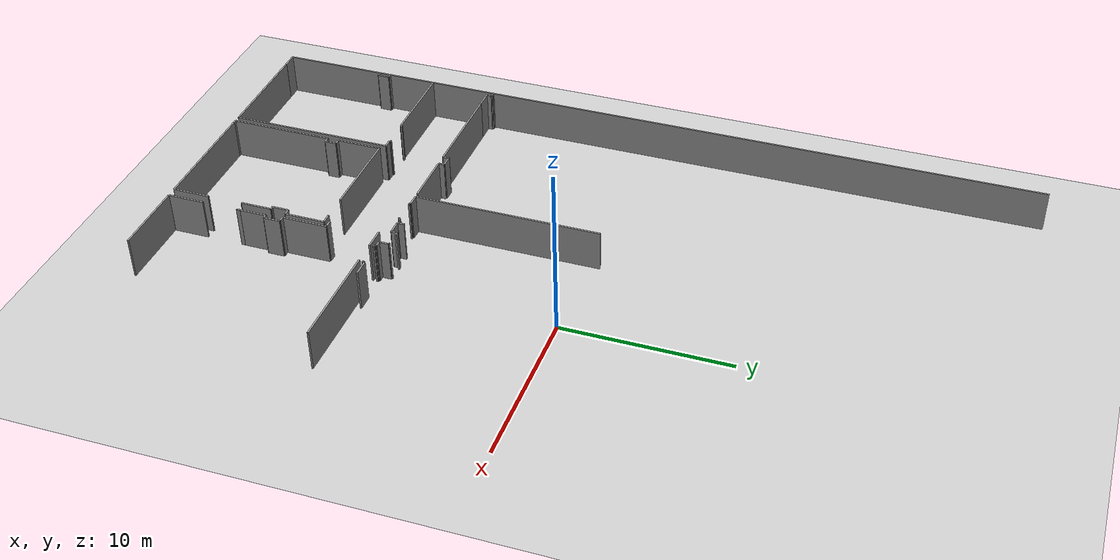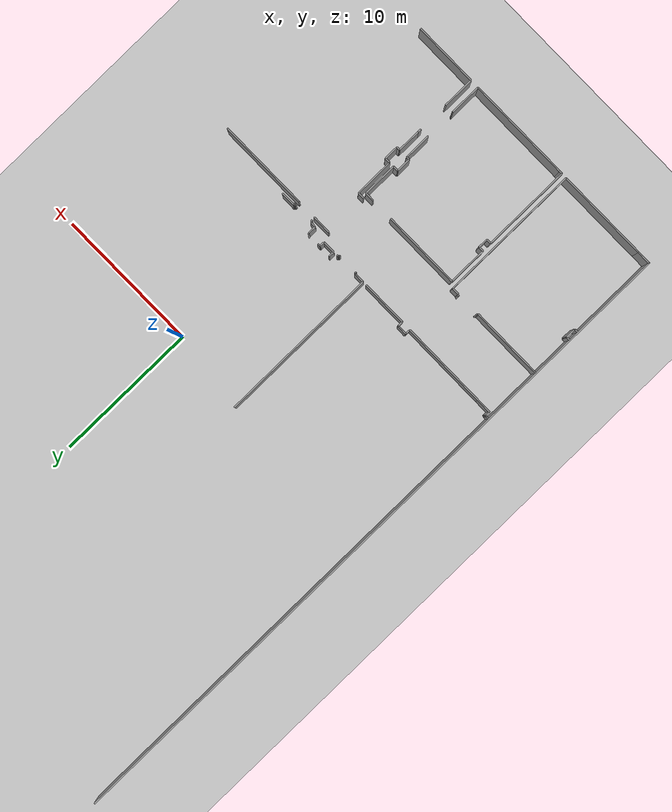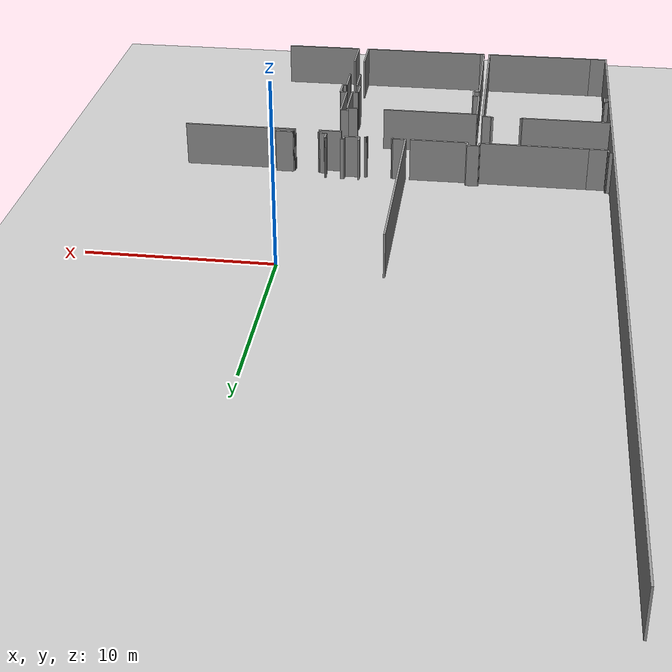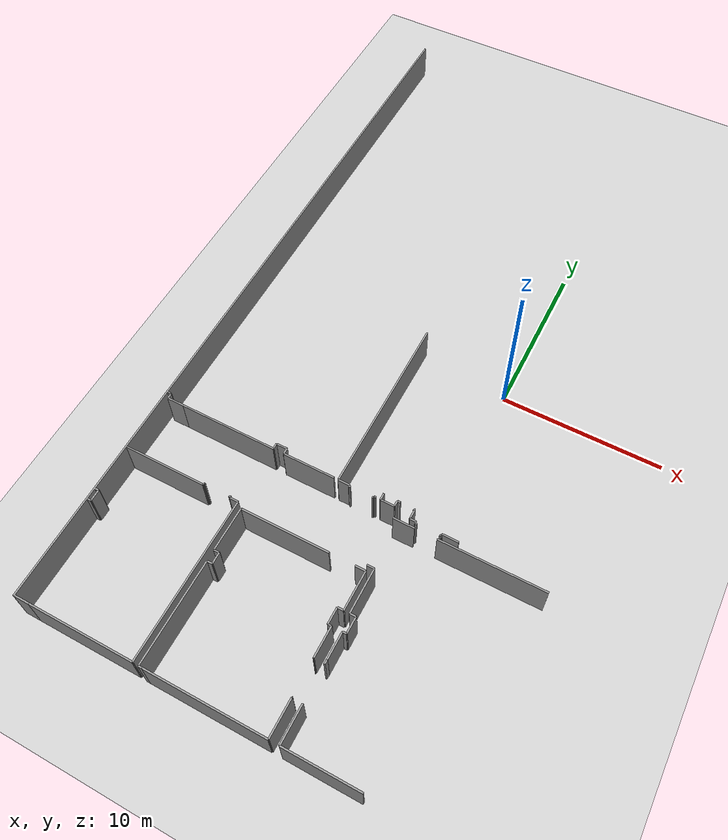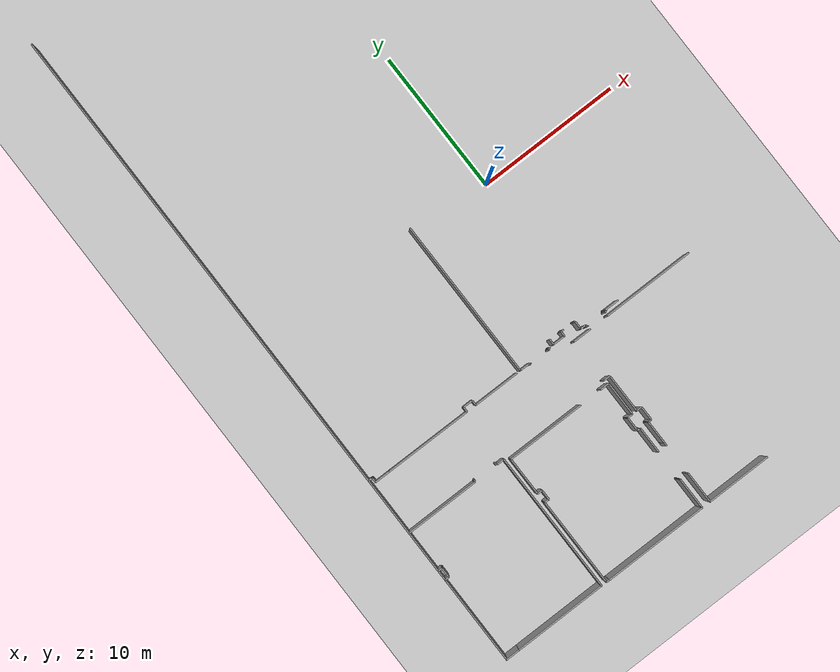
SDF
<sdf version="1.6">
 <world name="default">
  <model name="ground_plane">
   <static>1</static>
   <link name="link">
    <collision name="collision">
     <geometry><plane><normal>0 0 1</normal><size>100 100</size></plane></geometry>
     <surface><friction><ode><mu>100</mu><mu2>50</mu2></ode></friction></surface>
    </collision>
    <visual name="visual">
     <cast_shadows>0</cast_shadows>
     <geometry><plane><normal>0 0 1</normal><size>100 100</size></plane></geometry>
     <material>
      <script><uri>file://media/materials/scripts/gazebo.material</uri><name>Gazebo/Grey</name></script>
     </material>
    </visual>
   </link>
  </model>
  <model name="50055648">
   <static>1</static>
   <link name="Wall_37">
    <collision name="Wall_37_Collision">
     <geometry><box><size>1.05575386492 0.1 2.5</size></box></geometry>
     <pose>0.527876932458 0 1.25 0 0 0</pose>
    </collision>
    <visual name="Wall_37_Visual">
     <pose>0.527876932458 0 1.25 0 0 0</pose>
     <geometry><box><size>1.05575386492 0.1 2.5</size></box></geometry>
     <material>
      <script><uri>file://media/materials/scripts/gazebo.material</uri><name>Gazebo/Grey</name></script>
      <ambient>1 1 1 1</ambient>
     </material>
    </visual>
    <pose>1.34297074478 -34.5305572846 0 0 0 3.14159265359</pose>
   </link>
   <link name="Wall_38">
    <collision name="Wall_38_Collision">
     <geometry><box><size>0.288741250746 0.1 2.5</size></box></geometry>
     <pose>0.144370625373 0 1.25 0 0 0</pose>
    </collision>
    <visual name="Wall_38_Visual">
     <pose>0.144370625373 0 1.25 0 0 0</pose>
     <geometry><box><size>0.288741250746 0.1 2.5</size></box></geometry>
     <material>
      <script><uri>file://media/materials/scripts/gazebo.material</uri><name>Gazebo/Grey</name></script>
      <ambient>1 1 1 1</ambient>
     </material>
    </visual>
    <pose>0.287216879867 -34.5305572846 0 0 0 1.57079632679</pose>
   </link>
   <link name="Wall_39">
    <collision name="Wall_39_Collision">
     <geometry><box><size>0.0676090898377 0.1 2.5</size></box></geometry>
     <pose>0.0338045449188 0 1.25 0 0 0</pose>
    </collision>
    <visual name="Wall_39_Visual">
     <pose>0.0338045449188 0 1.25 0 0 0</pose>
     <geometry><box><size>0.0676090898377 0.1 2.5</size></box></geometry>
     <material>
      <script><uri>file://media/materials/scripts/gazebo.material</uri><name>Gazebo/Grey</name></script>
      <ambient>1 1 1 1</ambient>
     </material>
    </visual>
    <pose>0.287216879867 -34.2418160338 0 0 0 2.31366695557</pose>
   </link>
   <link name="Wall_40">
    <collision name="Wall_40_Collision">
     <geometry><box><size>0.236658579032 0.1 2.5</size></box></geometry>
     <pose>0.118329289516 0 1.25 0 0 0</pose>
    </collision>
    <visual name="Wall_40_Visual">
     <pose>0.118329289516 0 1.25 0 0 0</pose>
     <geometry><box><size>0.236658579032 0.1 2.5</size></box></geometry>
     <material>
      <script><uri>file://media/materials/scripts/gazebo.material</uri><name>Gazebo/Grey</name></script>
      <ambient>1 1 1 1</ambient>
     </material>
    </visual>
    <pose>0.241485753484 -34.1920199184 0 0 0 3.14159265359</pose>
   </link>
   <link name="Wall_55">
    <collision name="Wall_55_Collision">
     <geometry><box><size>3.21489818473 0.1 2.5</size></box></geometry>
     <pose>1.60744909236 0 1.25 0 0 0</pose>
    </collision>
    <visual name="Wall_55_Visual">
     <pose>1.60744909236 0 1.25 0 0 0</pose>
     <geometry><box><size>3.21489818473 0.1 2.5</size></box></geometry>
     <material>
      <script><uri>file://media/materials/scripts/gazebo.material</uri><name>Gazebo/Grey</name></script>
      <ambient>1 1 1 1</ambient>
     </material>
    </visual>
    <pose>11.2939368148 -34.5538039405 0 0 0 3.14159265359</pose>
   </link>
   <link name="Wall_56">
    <collision name="Wall_56_Collision">
     <geometry><box><size>0.354162167655 0.1 2.5</size></box></geometry>
     <pose>0.177081083828 0 1.25 0 0 0</pose>
    </collision>
    <visual name="Wall_56_Visual">
     <pose>0.177081083828 0 1.25 0 0 0</pose>
     <geometry><box><size>0.354162167655 0.1 2.5</size></box></geometry>
     <material>
      <script><uri>file://media/materials/scripts/gazebo.material</uri><name>Gazebo/Grey</name></script>
      <ambient>1 1 1 1</ambient>
     </material>
    </visual>
    <pose>8.0790386301 -34.5538039405 0 0 0 1.57079632679</pose>
   </link>
   <link name="Wall_57">
    <collision name="Wall_57_Collision">
     <geometry><box><size>0.673263805084 0.1 2.5</size></box></geometry>
     <pose>0.336631902542 0 1.25 0 0 0</pose>
    </collision>
    <visual name="Wall_57_Visual">
     <pose>0.336631902542 0 1.25 0 0 0</pose>
     <geometry><box><size>0.673263805084 0.1 2.5</size></box></geometry>
     <material>
      <script><uri>file://media/materials/scripts/gazebo.material</uri><name>Gazebo/Grey</name></script>
      <ambient>1 1 1 1</ambient>
     </material>
    </visual>
    <pose>8.0790386301 -34.1996417728 0 0 0 3.14159265359</pose>
   </link>
   <link name="Wall_58">
    <collision name="Wall_58_Collision">
     <geometry><box><size>0.00660560714421 0.1 2.5</size></box></geometry>
     <pose>0.0033028035721 0 1.25 0 0 0</pose>
    </collision>
    <visual name="Wall_58_Visual">
     <pose>0.0033028035721 0 1.25 0 0 0</pose>
     <geometry><box><size>0.00660560714421 0.1 2.5</size></box></geometry>
     <material>
      <script><uri>file://media/materials/scripts/gazebo.material</uri><name>Gazebo/Grey</name></script>
      <ambient>1 1 1 1</ambient>
     </material>
    </visual>
    <pose>7.40577482501 -34.1996417728 0 0 0 3.14159265359</pose>
   </link>
   <link name="Wall_59">
    <collision name="Wall_59_Collision">
     <geometry><box><size>0.349716085924 0.1 2.5</size></box></geometry>
     <pose>0.174858042962 0 1.25 0 0 0</pose>
    </collision>
    <visual name="Wall_59_Visual">
     <pose>0.174858042962 0 1.25 0 0 0</pose>
     <geometry><box><size>0.349716085924 0.1 2.5</size></box></geometry>
     <material>
      <script><uri>file://media/materials/scripts/gazebo.material</uri><name>Gazebo/Grey</name></script>
      <ambient>1 1 1 1</ambient>
     </material>
    </visual>
    <pose>7.39916921787 -34.1996417728 0 0 0 -1.57079632679</pose>
   </link>
   <link name="Wall_60">
    <collision name="Wall_60_Collision">
     <geometry><box><size>6.05622765482 0.1 2.5</size></box></geometry>
     <pose>3.02811382741 0 1.25 0 0 0</pose>
    </collision>
    <visual name="Wall_60_Visual">
     <pose>3.02811382741 0 1.25 0 0 0</pose>
     <geometry><box><size>6.05622765482 0.1 2.5</size></box></geometry>
     <material>
      <script><uri>file://media/materials/scripts/gazebo.material</uri><name>Gazebo/Grey</name></script>
      <ambient>1 1 1 1</ambient>
     </material>
    </visual>
    <pose>7.39916921787 -34.5493578588 0 0 0 3.13848831118</pose>
   </link>
   <link name="Wall_61">
    <collision name="Wall_61_Collision">
     <geometry><box><size>11.1557271884 0.1 2.5</size></box></geometry>
     <pose>5.57786359421 0 1.25 0 0 0</pose>
    </collision>
    <visual name="Wall_61_Visual">
     <pose>5.57786359421 0 1.25 0 0 0</pose>
     <geometry><box><size>11.1557271884 0.1 2.5</size></box></geometry>
     <material>
      <script><uri>file://media/materials/scripts/gazebo.material</uri><name>Gazebo/Grey</name></script>
      <ambient>1 1 1 1</ambient>
     </material>
    </visual>
    <pose>11.5608287496 -34.5479605188 0 0 0 1.57079632679</pose>
   </link>
   <link name="Wall_75">
    <collision name="Wall_75_Collision">
     <geometry><box><size>0.112676414172 0.1 2.5</size></box></geometry>
     <pose>0.0563382070858 0 1.25 0 0 0</pose>
    </collision>
    <visual name="Wall_75_Visual">
     <pose>0.0563382070858 0 1.25 0 0 0</pose>
     <geometry><box><size>0.112676414172 0.1 2.5</size></box></geometry>
     <material>
      <script><uri>file://media/materials/scripts/gazebo.material</uri><name>Gazebo/Grey</name></script>
      <ambient>1 1 1 1</ambient>
     </material>
    </visual>
    <pose>13.8907026079 -34.5427522516 0 0 0 3.14159265359</pose>
   </link>
   <link name="Wall_76">
    <collision name="Wall_76_Collision">
     <geometry><box><size>0.0805375947968 0.1 2.5</size></box></geometry>
     <pose>0.0402687973984 0 1.25 0 0 0</pose>
    </collision>
    <visual name="Wall_76_Visual">
     <pose>0.0402687973984 0 1.25 0 0 0</pose>
     <geometry><box><size>0.0805375947968 0.1 2.5</size></box></geometry>
     <material>
      <script><uri>file://media/materials/scripts/gazebo.material</uri><name>Gazebo/Grey</name></script>
      <ambient>1 1 1 1</ambient>
     </material>
    </visual>
    <pose>13.7780261938 -34.5427522516 0 0 0 -1.57079632679</pose>
   </link>
   <link name="Wall_77">
    <collision name="Wall_77_Collision">
     <geometry><box><size>0.0846025838086 0.1 2.5</size></box></geometry>
     <pose>0.0423012919043 0 1.25 0 0 0</pose>
    </collision>
    <visual name="Wall_77_Visual">
     <pose>0.0423012919043 0 1.25 0 0 0</pose>
     <geometry><box><size>0.0846025838086 0.1 2.5</size></box></geometry>
     <material>
      <script><uri>file://media/materials/scripts/gazebo.material</uri><name>Gazebo/Grey</name></script>
      <ambient>1 1 1 1</ambient>
     </material>
    </visual>
    <pose>13.7780261938 -34.6232898464 0 0 0 3.14159265359</pose>
   </link>
   <link name="Wall_78">
    <collision name="Wall_78_Collision">
     <geometry><box><size>0.0955272417779 0.1 2.5</size></box></geometry>
     <pose>0.047763620889 0 1.25 0 0 0</pose>
    </collision>
    <visual name="Wall_78_Visual">
     <pose>0.047763620889 0 1.25 0 0 0</pose>
     <geometry><box><size>0.0955272417779 0.1 2.5</size></box></geometry>
     <material>
      <script><uri>file://media/materials/scripts/gazebo.material</uri><name>Gazebo/Grey</name></script>
      <ambient>1 1 1 1</ambient>
     </material>
    </visual>
    <pose>12.3631559558 -34.6232898464 0 0 0 3.14159265359</pose>
   </link>
   <link name="Wall_79">
    <collision name="Wall_79_Collision">
     <geometry><box><size>0.0699940295474 0.1 2.5</size></box></geometry>
     <pose>0.0349970147737 0 1.25 0 0 0</pose>
    </collision>
    <visual name="Wall_79_Visual">
     <pose>0.0349970147737 0 1.25 0 0 0</pose>
     <geometry><box><size>0.0699940295474 0.1 2.5</size></box></geometry>
     <material>
      <script><uri>file://media/materials/scripts/gazebo.material</uri><name>Gazebo/Grey</name></script>
      <ambient>1 1 1 1</ambient>
     </material>
    </visual>
    <pose>12.2676287141 -34.6232898464 0 0 0 1.57079632679</pose>
   </link>
   <link name="Wall_80">
    <collision name="Wall_80_Collision">
     <geometry><box><size>0.706820100963 0.1 2.5</size></box></geometry>
     <pose>0.353410050482 0 1.25 0 0 0</pose>
    </collision>
    <visual name="Wall_80_Visual">
     <pose>0.353410050482 0 1.25 0 0 0</pose>
     <geometry><box><size>0.706820100963 0.1 2.5</size></box></geometry>
     <material>
      <script><uri>file://media/materials/scripts/gazebo.material</uri><name>Gazebo/Grey</name></script>
      <ambient>1 1 1 1</ambient>
     </material>
    </visual>
    <pose>12.2676287141 -34.5532958169 0 0 0 3.13404427072</pose>
   </link>
   <link name="Wall_85">
    <collision name="Wall_85_Collision">
     <geometry><box><size>0.200962894272 0.1 2.5</size></box></geometry>
     <pose>0.100481447136 0 1.25 0 0 0</pose>
    </collision>
    <visual name="Wall_85_Visual">
     <pose>0.100481447136 0 1.25 0 0 0</pose>
     <geometry><box><size>0.200962894272 0.1 2.5</size></box></geometry>
     <material>
      <script><uri>file://media/materials/scripts/gazebo.material</uri><name>Gazebo/Grey</name></script>
      <ambient>1 1 1 1</ambient>
     </material>
    </visual>
    <pose>15.2189377676 -34.1901144548 0 0 0 3.14159265359</pose>
   </link>
   <link name="Wall_86">
    <collision name="Wall_86_Collision">
     <geometry><box><size>0.348445776858 0.1 2.5</size></box></geometry>
     <pose>0.174222888429 0 1.25 0 0 0</pose>
    </collision>
    <visual name="Wall_86_Visual">
     <pose>0.174222888429 0 1.25 0 0 0</pose>
     <geometry><box><size>0.348445776858 0.1 2.5</size></box></geometry>
     <material>
      <script><uri>file://media/materials/scripts/gazebo.material</uri><name>Gazebo/Grey</name></script>
      <ambient>1 1 1 1</ambient>
     </material>
    </visual>
    <pose>15.0179748733 -34.1901144548 0 0 0 -1.57079632679</pose>
   </link>
   <link name="Wall_87">
    <collision name="Wall_87_Collision">
     <geometry><box><size>0.847296147153 0.1 2.5</size></box></geometry>
     <pose>0.423648073576 0 1.25 0 0 0</pose>
    </collision>
    <visual name="Wall_87_Visual">
     <pose>0.423648073576 0 1.25 0 0 0</pose>
     <geometry><box><size>0.847296147153 0.1 2.5</size></box></geometry>
     <material>
      <script><uri>file://media/materials/scripts/gazebo.material</uri><name>Gazebo/Grey</name></script>
      <ambient>1 1 1 1</ambient>
     </material>
    </visual>
    <pose>15.0179748733 -34.5385602317 0 0 0 3.14159265359</pose>
   </link>
   <link name="Wall_88">
    <collision name="Wall_88_Collision">
     <geometry><box><size>0.412342322887 0.1 2.5</size></box></geometry>
     <pose>0.206171161444 0 1.25 0 0 0</pose>
    </collision>
    <visual name="Wall_88_Visual">
     <pose>0.206171161444 0 1.25 0 0 0</pose>
     <geometry><box><size>0.412342322887 0.1 2.5</size></box></geometry>
     <material>
      <script><uri>file://media/materials/scripts/gazebo.material</uri><name>Gazebo/Grey</name></script>
      <ambient>1 1 1 1</ambient>
     </material>
    </visual>
    <pose>14.1706787261 -34.5385602317 0 0 0 1.57079632679</pose>
   </link>
   <link name="Wall_94">
    <collision name="Wall_94_Collision">
     <geometry><box><size>0.951461490581 0.1 2.5</size></box></geometry>
     <pose>0.47573074529 0 1.25 0 0 0</pose>
    </collision>
    <visual name="Wall_94_Visual">
     <pose>0.47573074529 0 1.25 0 0 0</pose>
     <geometry><box><size>0.951461490581 0.1 2.5</size></box></geometry>
     <material>
      <script><uri>file://media/materials/scripts/gazebo.material</uri><name>Gazebo/Grey</name></script>
      <ambient>1 1 1 1</ambient>
     </material>
    </visual>
    <pose>0.951461490581 -48.0670977249 0 0 0 3.14159265359</pose>
   </link>
   <link name="Wall_95">
    <collision name="Wall_95_Collision">
     <geometry><box><size>0.278197685497 0.1 2.5</size></box></geometry>
     <pose>0.139098842748 0 1.25 0 0 0</pose>
    </collision>
    <visual name="Wall_95_Visual">
     <pose>0.139098842748 0 1.25 0 0 0</pose>
     <geometry><box><size>0.278197685497 0.1 2.5</size></box></geometry>
     <material>
      <script><uri>file://media/materials/scripts/gazebo.material</uri><name>Gazebo/Grey</name></script>
      <ambient>1 1 1 1</ambient>
     </material>
    </visual>
    <pose>0.0 -41.8997472085 0 0 0 0.0</pose>
   </link>
   <link name="Wall_96">
    <collision name="Wall_96_Collision">
     <geometry><box><size>0.693588750143 0.1 2.5</size></box></geometry>
     <pose>0.346794375071 0 1.25 0 0 0</pose>
    </collision>
    <visual name="Wall_96_Visual">
     <pose>0.346794375071 0 1.25 0 0 0</pose>
     <geometry><box><size>0.693588750143 0.1 2.5</size></box></geometry>
     <material>
      <script><uri>file://media/materials/scripts/gazebo.material</uri><name>Gazebo/Grey</name></script>
      <ambient>1 1 1 1</ambient>
     </material>
    </visual>
    <pose>0.278197685497 -41.8997472085 0 0 0 1.57079632679</pose>
   </link>
   <link name="Wall_97">
    <collision name="Wall_97_Collision">
     <geometry><box><size>0.256602431372 0.1 2.5</size></box></geometry>
     <pose>0.128301215686 0 1.25 0 0 0</pose>
    </collision>
    <visual name="Wall_97_Visual">
     <pose>0.128301215686 0 1.25 0 0 0</pose>
     <geometry><box><size>0.256602431372 0.1 2.5</size></box></geometry>
     <material>
      <script><uri>file://media/materials/scripts/gazebo.material</uri><name>Gazebo/Grey</name></script>
      <ambient>1 1 1 1</ambient>
     </material>
    </visual>
    <pose>0.278197685497 -41.2061584584 0 0 0 3.14159265359</pose>
   </link>
   <link name="Wall_98">
    <collision name="Wall_98_Collision">
     <geometry><box><size>5.10854790971 0.1 2.5</size></box></geometry>
     <pose>2.55427395485 0 1.25 0 0 0</pose>
    </collision>
    <visual name="Wall_98_Visual">
     <pose>2.55427395485 0 1.25 0 0 0</pose>
     <geometry><box><size>5.10854790971 0.1 2.5</size></box></geometry>
     <material>
      <script><uri>file://media/materials/scripts/gazebo.material</uri><name>Gazebo/Grey</name></script>
      <ambient>1 1 1 1</ambient>
     </material>
    </visual>
    <pose>0.0215952541253 -38.2672984337 0 0 0 0.0</pose>
   </link>
   <link name="Wall_99">
    <collision name="Wall_99_Collision">
     <geometry><box><size>0.0802835329836 0.1 2.5</size></box></geometry>
     <pose>0.0401417664918 0 1.25 0 0 0</pose>
    </collision>
    <visual name="Wall_99_Visual">
     <pose>0.0401417664918 0 1.25 0 0 0</pose>
     <geometry><box><size>0.0802835329836 0.1 2.5</size></box></geometry>
     <material>
      <script><uri>file://media/materials/scripts/gazebo.material</uri><name>Gazebo/Grey</name></script>
      <ambient>1 1 1 1</ambient>
     </material>
    </visual>
    <pose>5.13014316383 -38.2672984337 0 0 0 1.57079632679</pose>
   </link>
   <link name="Wall_100">
    <collision name="Wall_100_Collision">
     <geometry><box><size>0.0974327053772 0.1 2.5</size></box></geometry>
     <pose>0.0487163526886 0 1.25 0 0 0</pose>
    </collision>
    <visual name="Wall_100_Visual">
     <pose>0.0487163526886 0 1.25 0 0 0</pose>
     <geometry><box><size>0.0974327053772 0.1 2.5</size></box></geometry>
     <material>
      <script><uri>file://media/materials/scripts/gazebo.material</uri><name>Gazebo/Grey</name></script>
      <ambient>1 1 1 1</ambient>
     </material>
    </visual>
    <pose>5.13014316383 -38.1870149007 0 0 0 0.0</pose>
   </link>
   <link name="Wall_101">
    <collision name="Wall_101_Collision">
     <geometry><box><size>0.110770950572 0.1 2.5</size></box></geometry>
     <pose>0.0553854752861 0 1.25 0 0 0</pose>
    </collision>
    <visual name="Wall_101_Visual">
     <pose>0.0553854752861 0 1.25 0 0 0</pose>
     <geometry><box><size>0.110770950572 0.1 2.5</size></box></geometry>
     <material>
      <script><uri>file://media/materials/scripts/gazebo.material</uri><name>Gazebo/Grey</name></script>
      <ambient>1 1 1 1</ambient>
     </material>
    </visual>
    <pose>6.76769858106 -38.1870149007 0 0 0 0.0</pose>
   </link>
   <link name="Wall_102">
    <collision name="Wall_102_Collision">
     <geometry><box><size>0.0636424842164 0.1 2.5</size></box></geometry>
     <pose>0.0318212421082 0 1.25 0 0 0</pose>
    </collision>
    <visual name="Wall_102_Visual">
     <pose>0.0318212421082 0 1.25 0 0 0</pose>
     <geometry><box><size>0.0636424842164 0.1 2.5</size></box></geometry>
     <material>
      <script><uri>file://media/materials/scripts/gazebo.material</uri><name>Gazebo/Grey</name></script>
      <ambient>1 1 1 1</ambient>
     </material>
    </visual>
    <pose>6.87846953164 -38.1870149007 0 0 0 -1.57079632679</pose>
   </link>
   <link name="Wall_103">
    <collision name="Wall_103_Collision">
     <geometry><box><size>0.512061584584 0.1 2.5</size></box></geometry>
     <pose>0.256030792292 0 1.25 0 0 0</pose>
    </collision>
    <visual name="Wall_103_Visual">
     <pose>0.256030792292 0 1.25 0 0 0</pose>
     <geometry><box><size>0.512061584584 0.1 2.5</size></box></geometry>
     <material>
      <script><uri>file://media/materials/scripts/gazebo.material</uri><name>Gazebo/Grey</name></script>
      <ambient>1 1 1 1</ambient>
     </material>
    </visual>
    <pose>6.87846953164 -38.2506573849 0 0 0 0.0</pose>
   </link>
   <link name="Wall_104">
    <collision name="Wall_104_Collision">
     <geometry><box><size>9.80919957826 0.1 2.5</size></box></geometry>
     <pose>4.90459978913 0 1.25 0 0 0</pose>
    </collision>
    <visual name="Wall_104_Visual">
     <pose>4.90459978913 0 1.25 0 0 0</pose>
     <geometry><box><size>9.80919957826 0.1 2.5</size></box></geometry>
     <material>
      <script><uri>file://media/materials/scripts/gazebo.material</uri><name>Gazebo/Grey</name></script>
      <ambient>1 1 1 1</ambient>
     </material>
    </visual>
    <pose>7.39053111622 -38.2506573849 0 0 0 -1.57079632679</pose>
   </link>
   <link name="Wall_105">
    <collision name="Wall_105_Collision">
     <geometry><box><size>6.43907369677 0.1 2.5</size></box></geometry>
     <pose>3.21953684839 0 1.25 0 0 0</pose>
    </collision>
    <visual name="Wall_105_Visual">
     <pose>3.21953684839 0 1.25 0 0 0</pose>
     <geometry><box><size>6.43907369677 0.1 2.5</size></box></geometry>
     <material>
      <script><uri>file://media/materials/scripts/gazebo.material</uri><name>Gazebo/Grey</name></script>
      <ambient>1 1 1 1</ambient>
     </material>
    </visual>
    <pose>7.39053111622 -48.0598569632 0 0 0 -3.14046814973</pose>
   </link>
   <link name="Wall_106">
    <collision name="Wall_106_Collision">
     <geometry><box><size>0.219763468452 0.1 2.5</size></box></geometry>
     <pose>0.109881734226 0 1.25 0 0 0</pose>
    </collision>
    <visual name="Wall_106_Visual">
     <pose>0.109881734226 0 1.25 0 0 0</pose>
     <geometry><box><size>0.219763468452 0.1 2.5</size></box></geometry>
     <material>
      <script><uri>file://media/materials/scripts/gazebo.material</uri><name>Gazebo/Grey</name></script>
      <ambient>1 1 1 1</ambient>
     </material>
    </visual>
    <pose>7.97690578118 -48.0789115992 0 0 0 3.14159265359</pose>
   </link>
   <link name="Wall_107">
    <collision name="Wall_107_Collision">
     <geometry><box><size>6.18640515237 0.1 2.5</size></box></geometry>
     <pose>3.09320257619 0 1.25 0 0 0</pose>
    </collision>
    <visual name="Wall_107_Visual">
     <pose>3.09320257619 0 1.25 0 0 0</pose>
     <geometry><box><size>6.18640515237 0.1 2.5</size></box></geometry>
     <material>
      <script><uri>file://media/materials/scripts/gazebo.material</uri><name>Gazebo/Grey</name></script>
      <ambient>1 1 1 1</ambient>
     </material>
    </visual>
    <pose>7.75714231272 -48.0789115992 0 0 0 1.57079632679</pose>
   </link>
   <link name="Wall_108">
    <collision name="Wall_108_Collision">
     <geometry><box><size>0.324563966413 0.1 2.5</size></box></geometry>
     <pose>0.162281983207 0 1.25 0 0 0</pose>
    </collision>
    <visual name="Wall_108_Visual">
     <pose>0.162281983207 0 1.25 0 0 0</pose>
     <geometry><box><size>0.324563966413 0.1 2.5</size></box></geometry>
     <material>
      <script><uri>file://media/materials/scripts/gazebo.material</uri><name>Gazebo/Grey</name></script>
      <ambient>1 1 1 1</ambient>
     </material>
    </visual>
    <pose>7.75714231272 -41.8925064468 0 0 0 0.0</pose>
   </link>
   <link name="Wall_109">
    <collision name="Wall_109_Collision">
     <geometry><box><size>0.687237204812 0.1 2.5</size></box></geometry>
     <pose>0.343618602406 0 1.25 0 0 0</pose>
    </collision>
    <visual name="Wall_109_Visual">
     <pose>0.343618602406 0 1.25 0 0 0</pose>
     <geometry><box><size>0.687237204812 0.1 2.5</size></box></geometry>
     <material>
      <script><uri>file://media/materials/scripts/gazebo.material</uri><name>Gazebo/Grey</name></script>
      <ambient>1 1 1 1</ambient>
     </material>
    </visual>
    <pose>8.08170627914 -41.8925064468 0 0 0 1.57079632679</pose>
   </link>
   <link name="Wall_110">
    <collision name="Wall_110_Collision">
     <geometry><box><size>0.34120501518 0.1 2.5</size></box></geometry>
     <pose>0.17060250759 0 1.25 0 0 0</pose>
    </collision>
    <visual name="Wall_110_Visual">
     <pose>0.17060250759 0 1.25 0 0 0</pose>
     <geometry><box><size>0.34120501518 0.1 2.5</size></box></geometry>
     <material>
      <script><uri>file://media/materials/scripts/gazebo.material</uri><name>Gazebo/Grey</name></script>
      <ambient>1 1 1 1</ambient>
     </material>
    </visual>
    <pose>8.08170627914 -41.205269242 0 0 0 3.14159265359</pose>
   </link>
   <link name="Wall_111">
    <collision name="Wall_111_Collision">
     <geometry><box><size>2.6865766441 0.1 2.5</size></box></geometry>
     <pose>1.34328832205 0 1.25 0 0 0</pose>
    </collision>
    <visual name="Wall_111_Visual">
     <pose>1.34328832205 0 1.25 0 0 0</pose>
     <geometry><box><size>2.6865766441 0.1 2.5</size></box></geometry>
     <material>
      <script><uri>file://media/materials/scripts/gazebo.material</uri><name>Gazebo/Grey</name></script>
      <ambient>1 1 1 1</ambient>
     </material>
    </visual>
    <pose>7.74050126396 -41.205269242 0 0 0 1.57079632679</pose>
   </link>
   <link name="Wall_112">
    <collision name="Wall_112_Collision">
     <geometry><box><size>5.45699368656 0.1 2.5</size></box></geometry>
     <pose>2.72849684328 0 1.25 0 0 0</pose>
    </collision>
    <visual name="Wall_112_Visual">
     <pose>2.72849684328 0 1.25 0 0 0</pose>
     <geometry><box><size>5.45699368656 0.1 2.5</size></box></geometry>
     <material>
      <script><uri>file://media/materials/scripts/gazebo.material</uri><name>Gazebo/Grey</name></script>
      <ambient>1 1 1 1</ambient>
     </material>
    </visual>
    <pose>7.74050126396 -38.5186925979 0 0 0 0.0</pose>
   </link>
   <link name="Wall_113">
    <collision name="Wall_113_Collision">
     <geometry><box><size>0.635916718538 0.1 2.5</size></box></geometry>
     <pose>0.317958359269 0 1.25 0 0 0</pose>
    </collision>
    <visual name="Wall_113_Visual">
     <pose>0.317958359269 0 1.25 0 0 0</pose>
     <geometry><box><size>0.635916718538 0.1 2.5</size></box></geometry>
     <material>
      <script><uri>file://media/materials/scripts/gazebo.material</uri><name>Gazebo/Grey</name></script>
      <ambient>1 1 1 1</ambient>
     </material>
    </visual>
    <pose>14.7401582805 -38.5186925979 0 0 0 0.0</pose>
   </link>
   <link name="Wall_114">
    <collision name="Wall_114_Collision">
     <geometry><box><size>2.38779995173 0.1 2.5</size></box></geometry>
     <pose>1.19389997586 0 1.25 0 0 0</pose>
    </collision>
    <visual name="Wall_114_Visual">
     <pose>1.19389997586 0 1.25 0 0 0</pose>
     <geometry><box><size>2.38779995173 0.1 2.5</size></box></geometry>
     <material>
      <script><uri>file://media/materials/scripts/gazebo.material</uri><name>Gazebo/Grey</name></script>
      <ambient>1 1 1 1</ambient>
     </material>
    </visual>
    <pose>15.376074999 -38.5186925979 0 0 0 -1.57079632679</pose>
   </link>
   <link name="Wall_115">
    <collision name="Wall_115_Collision">
     <geometry><box><size>0.373851958181 0.1 2.5</size></box></geometry>
     <pose>0.186925979091 0 1.25 0 0 0</pose>
    </collision>
    <visual name="Wall_115_Visual">
     <pose>0.186925979091 0 1.25 0 0 0</pose>
     <geometry><box><size>0.373851958181 0.1 2.5</size></box></geometry>
     <material>
      <script><uri>file://media/materials/scripts/gazebo.material</uri><name>Gazebo/Grey</name></script>
      <ambient>1 1 1 1</ambient>
     </material>
    </visual>
    <pose>15.376074999 -40.9064925496 0 0 0 3.14159265359</pose>
   </link>
   <link name="Wall_116">
    <collision name="Wall_116_Collision">
     <geometry><box><size>0.991603257072 0.1 2.5</size></box></geometry>
     <pose>0.495801628536 0 1.25 0 0 0</pose>
    </collision>
    <visual name="Wall_116_Visual">
     <pose>0.495801628536 0 1.25 0 0 0</pose>
     <geometry><box><size>0.991603257072 0.1 2.5</size></box></geometry>
     <material>
      <script><uri>file://media/materials/scripts/gazebo.material</uri><name>Gazebo/Grey</name></script>
      <ambient>1 1 1 1</ambient>
     </material>
    </visual>
    <pose>15.0022230409 -40.9064925496 0 0 0 -1.57079632679</pose>
   </link>
   <link name="Wall_117">
    <collision name="Wall_117_Collision">
     <geometry><box><size>0.214047077654 0.1 2.5</size></box></geometry>
     <pose>0.107023538827 0 1.25 0 0 0</pose>
    </collision>
    <visual name="Wall_117_Visual">
     <pose>0.107023538827 0 1.25 0 0 0</pose>
     <geometry><box><size>0.214047077654 0.1 2.5</size></box></geometry>
     <material>
      <script><uri>file://media/materials/scripts/gazebo.material</uri><name>Gazebo/Grey</name></script>
      <ambient>1 1 1 1</ambient>
     </material>
    </visual>
    <pose>15.0022230409 -41.8980958067 0 0 0 0.0</pose>
   </link>
   <link name="Wall_118">
    <collision name="Wall_118_Collision">
     <geometry><box><size>1.83381816796 0.1 2.5</size></box></geometry>
     <pose>0.91690908398 0 1.25 0 0 0</pose>
    </collision>
    <visual name="Wall_118_Visual">
     <pose>0.91690908398 0 1.25 0 0 0</pose>
     <geometry><box><size>1.83381816796 0.1 2.5</size></box></geometry>
     <material>
      <script><uri>file://media/materials/scripts/gazebo.material</uri><name>Gazebo/Grey</name></script>
      <ambient>1 1 1 1</ambient>
     </material>
    </visual>
    <pose>15.2162701185 -41.8980958067 0 0 0 -1.57079632679</pose>
   </link>
   <link name="Wall_119">
    <collision name="Wall_119_Collision">
     <geometry><box><size>0.0274386758298 0.1 2.5</size></box></geometry>
     <pose>0.0137193379149 0 1.25 0 0 0</pose>
    </collision>
    <visual name="Wall_119_Visual">
     <pose>0.0137193379149 0 1.25 0 0 0</pose>
     <geometry><box><size>0.0274386758298 0.1 2.5</size></box></geometry>
     <material>
      <script><uri>file://media/materials/scripts/gazebo.material</uri><name>Gazebo/Grey</name></script>
      <ambient>1 1 1 1</ambient>
     </material>
    </visual>
    <pose>15.2162701185 -43.7319139747 0 0 0 0.0</pose>
   </link>
   <link name="Wall_120">
    <collision name="Wall_120_Collision">
     <geometry><box><size>0.015370739701 0.1 2.5</size></box></geometry>
     <pose>0.00768536985048 0 1.25 0 0 0</pose>
    </collision>
    <visual name="Wall_120_Visual">
     <pose>0.00768536985048 0 1.25 0 0 0</pose>
     <geometry><box><size>0.015370739701 0.1 2.5</size></box></geometry>
     <material>
      <script><uri>file://media/materials/scripts/gazebo.material</uri><name>Gazebo/Grey</name></script>
      <ambient>1 1 1 1</ambient>
     </material>
    </visual>
    <pose>15.2437087943 -45.8678116386 0 0 0 3.14159265359</pose>
   </link>
   <link name="Wall_121">
    <collision name="Wall_121_Collision">
     <geometry><box><size>2.21046480609 0.1 2.5</size></box></geometry>
     <pose>1.10523240304 0 1.25 0 0 0</pose>
    </collision>
    <visual name="Wall_121_Visual">
     <pose>1.10523240304 0 1.25 0 0 0</pose>
     <geometry><box><size>2.21046480609 0.1 2.5</size></box></geometry>
     <material>
      <script><uri>file://media/materials/scripts/gazebo.material</uri><name>Gazebo/Grey</name></script>
      <ambient>1 1 1 1</ambient>
     </material>
    </visual>
    <pose>15.2283380546 -45.8678116386 0 0 0 -1.57079632679</pose>
   </link>
   <link name="Wall_122">
    <collision name="Wall_122_Collision">
     <geometry><box><size>7.25143230129 0.1 2.5</size></box></geometry>
     <pose>3.62571615064 0 1.25 0 0 0</pose>
    </collision>
    <visual name="Wall_122_Visual">
     <pose>3.62571615064 0 1.25 0 0 0</pose>
     <geometry><box><size>7.25143230129 0.1 2.5</size></box></geometry>
     <material>
      <script><uri>file://media/materials/scripts/gazebo.material</uri><name>Gazebo/Grey</name></script>
      <ambient>1 1 1 1</ambient>
     </material>
    </visual>
    <pose>15.2283380546 -48.0782764447 0 0 0 -3.14150506337</pose>
   </link>
   <link name="Wall_123">
    <collision name="Wall_123_Collision">
     <geometry><box><size>1.60173270157 0.1 2.5</size></box></geometry>
     <pose>0.800866350783 0 1.25 0 0 0</pose>
    </collision>
    <visual name="Wall_123_Visual">
     <pose>0.800866350783 0 1.25 0 0 0</pose>
     <geometry><box><size>1.60173270157 0.1 2.5</size></box></geometry>
     <material>
      <script><uri>file://media/materials/scripts/gazebo.material</uri><name>Gazebo/Grey</name></script>
      <ambient>1 1 1 1</ambient>
     </material>
    </visual>
    <pose>15.8467245081 -43.4932229011 0 0 0 1.57079632679</pose>
   </link>
   <link name="Wall_124">
    <collision name="Wall_124_Collision">
     <geometry><box><size>0.235261239059 0.1 2.5</size></box></geometry>
     <pose>0.11763061953 0 1.25 0 0 0</pose>
    </collision>
    <visual name="Wall_124_Visual">
     <pose>0.11763061953 0 1.25 0 0 0</pose>
     <geometry><box><size>0.235261239059 0.1 2.5</size></box></geometry>
     <material>
      <script><uri>file://media/materials/scripts/gazebo.material</uri><name>Gazebo/Grey</name></script>
      <ambient>1 1 1 1</ambient>
     </material>
    </visual>
    <pose>15.8467245081 -41.8914901996 0 0 0 0.0</pose>
   </link>
   <link name="Wall_125">
    <collision name="Wall_125_Collision">
     <geometry><box><size>0.991222164353 0.1 2.5</size></box></geometry>
     <pose>0.495611082176 0 1.25 0 0 0</pose>
    </collision>
    <visual name="Wall_125_Visual">
     <pose>0.495611082176 0 1.25 0 0 0</pose>
     <geometry><box><size>0.991222164353 0.1 2.5</size></box></geometry>
     <material>
      <script><uri>file://media/materials/scripts/gazebo.material</uri><name>Gazebo/Grey</name></script>
      <ambient>1 1 1 1</ambient>
     </material>
    </visual>
    <pose>16.0819857471 -41.8914901996 0 0 0 1.57079632679</pose>
   </link>
   <link name="Wall_126">
    <collision name="Wall_126_Collision">
     <geometry><box><size>0.370041030983 0.1 2.5</size></box></geometry>
     <pose>0.185020515491 0 1.25 0 0 0</pose>
    </collision>
    <visual name="Wall_126_Visual">
     <pose>0.185020515491 0 1.25 0 0 0</pose>
     <geometry><box><size>0.370041030983 0.1 2.5</size></box></geometry>
     <material>
      <script><uri>file://media/materials/scripts/gazebo.material</uri><name>Gazebo/Grey</name></script>
      <ambient>1 1 1 1</ambient>
     </material>
    </visual>
    <pose>16.0819857471 -40.9002680352 0 0 0 3.14159265359</pose>
   </link>
   <link name="Wall_127">
    <collision name="Wall_127_Collision">
     <geometry><box><size>2.70296363105 0.1 2.5</size></box></geometry>
     <pose>1.35148181553 0 1.25 0 0 0</pose>
    </collision>
    <visual name="Wall_127_Visual">
     <pose>1.35148181553 0 1.25 0 0 0</pose>
     <geometry><box><size>2.70296363105 0.1 2.5</size></box></geometry>
     <material>
      <script><uri>file://media/materials/scripts/gazebo.material</uri><name>Gazebo/Grey</name></script>
      <ambient>1 1 1 1</ambient>
     </material>
    </visual>
    <pose>15.7119447161 -40.9002680352 0 0 0 1.57079632679</pose>
   </link>
   <link name="Wall_128">
    <collision name="Wall_128_Collision">
     <geometry><box><size>0.449689409433 0.1 2.5</size></box></geometry>
     <pose>0.224844704717 0 1.25 0 0 0</pose>
    </collision>
    <visual name="Wall_128_Visual">
     <pose>0.224844704717 0 1.25 0 0 0</pose>
     <geometry><box><size>0.449689409433 0.1 2.5</size></box></geometry>
     <material>
      <script><uri>file://media/materials/scripts/gazebo.material</uri><name>Gazebo/Grey</name></script>
      <ambient>1 1 1 1</ambient>
     </material>
    </visual>
    <pose>15.7119447161 -38.1973044042 0 0 0 3.14159265359</pose>
   </link>
   <link name="Wall_129">
    <collision name="Wall_129_Collision">
     <geometry><box><size>1.30054242197 0.1 2.5</size></box></geometry>
     <pose>0.650271210986 0 1.25 0 0 0</pose>
    </collision>
    <visual name="Wall_129_Visual">
     <pose>0.650271210986 0 1.25 0 0 0</pose>
     <geometry><box><size>1.30054242197 0.1 2.5</size></box></geometry>
     <material>
      <script><uri>file://media/materials/scripts/gazebo.material</uri><name>Gazebo/Grey</name></script>
      <ambient>1 1 1 1</ambient>
     </material>
    </visual>
    <pose>15.2622553067 -35.1791770938 0 0 0 0.0</pose>
   </link>
   <link name="Wall_130">
    <collision name="Wall_130_Collision">
     <geometry><box><size>6.38343008854 0.1 2.5</size></box></geometry>
     <pose>3.19171504427 0 1.25 0 0 0</pose>
    </collision>
    <visual name="Wall_130_Visual">
     <pose>3.19171504427 0 1.25 0 0 0</pose>
     <geometry><box><size>6.38343008854 0.1 2.5</size></box></geometry>
     <material>
      <script><uri>file://media/materials/scripts/gazebo.material</uri><name>Gazebo/Grey</name></script>
      <ambient>1 1 1 1</ambient>
     </material>
    </visual>
    <pose>17.8895085174 -35.1791770938 0 0 0 0.0</pose>
   </link>
   <link name="Wall_161">
    <collision name="Wall_161_Collision">
     <geometry><box><size>4.49384535257 0.1 2.5</size></box></geometry>
     <pose>2.24692267629 0 1.25 0 0 0</pose>
    </collision>
    <visual name="Wall_161_Visual">
     <pose>2.24692267629 0 1.25 0 0 0</pose>
     <geometry><box><size>4.49384535257 0.1 2.5</size></box></geometry>
     <material>
      <script><uri>file://media/materials/scripts/gazebo.material</uri><name>Gazebo/Grey</name></script>
      <ambient>1 1 1 1</ambient>
     </material>
    </visual>
    <pose>20.334599408 -48.0785305065 0 0 0 3.14159265359</pose>
   </link>
   <link name="Wall_162">
    <collision name="Wall_162_Collision">
     <geometry><box><size>2.20093748809 0.1 2.5</size></box></geometry>
     <pose>1.10046874405 0 1.25 0 0 0</pose>
    </collision>
    <visual name="Wall_162_Visual">
     <pose>1.10046874405 0 1.25 0 0 0</pose>
     <geometry><box><size>2.20093748809 0.1 2.5</size></box></geometry>
     <material>
      <script><uri>file://media/materials/scripts/gazebo.material</uri><name>Gazebo/Grey</name></script>
      <ambient>1 1 1 1</ambient>
     </material>
    </visual>
    <pose>15.8407540555 -48.0785305065 0 0 0 1.57079632679</pose>
   </link>
   <link name="Wall_163">
    <collision name="Wall_163_Collision">
     <geometry><box><size>0.249814118261 0.1 2.5</size></box></geometry>
     <pose>0.124907059131 0 1.25 0 0 0</pose>
    </collision>
    <visual name="Wall_163_Visual">
     <pose>0.124907059131 0 1.25 0 0 0</pose>
     <geometry><box><size>0.249814118261 0.1 2.5</size></box></geometry>
     <material>
      <script><uri>file://media/materials/scripts/gazebo.material</uri><name>Gazebo/Grey</name></script>
      <ambient>1 1 1 1</ambient>
     </material>
    </visual>
    <pose>15.8407540555 -43.7429656635 0 0 0 1.54689447058</pose>
   </link>
   <link name="Wall_164">
    <collision name="Wall_164_Collision">
     <geometry><box><size>0.561984730885 0.1 2.5</size></box></geometry>
     <pose>0.280992365443 0 1.25 0 0 0</pose>
    </collision>
    <visual name="Wall_164_Visual">
     <pose>0.280992365443 0 1.25 0 0 0</pose>
     <geometry><box><size>0.561984730885 0.1 2.5</size></box></geometry>
     <material>
      <script><uri>file://media/materials/scripts/gazebo.material</uri><name>Gazebo/Grey</name></script>
      <ambient>1 1 1 1</ambient>
     </material>
    </visual>
    <pose>16.0918941578 -34.7960518794 0 0 0 1.57079632679</pose>
   </link>
   <link name="Wall_165">
    <collision name="Wall_165_Collision">
     <geometry><box><size>0.0811449130595 0.1 2.5</size></box></geometry>
     <pose>0.0405724565297 0 1.25 0 0 0</pose>
    </collision>
    <visual name="Wall_165_Visual">
     <pose>0.0405724565297 0 1.25 0 0 0</pose>
     <geometry><box><size>0.0811449130595 0.1 2.5</size></box></geometry>
     <material>
      <script><uri>file://media/materials/scripts/gazebo.material</uri><name>Gazebo/Grey</name></script>
      <ambient>1 1 1 1</ambient>
     </material>
    </visual>
    <pose>16.0918941578 -34.2340671485 0 0 0 2.52188911842</pose>
   </link>
   <link name="Wall_181">
    <collision name="Wall_181_Collision">
     <geometry><box><size>0.989316700753 0.1 2.5</size></box></geometry>
     <pose>0.494658350377 0 1.25 0 0 0</pose>
    </collision>
    <visual name="Wall_181_Visual">
     <pose>0.494658350377 0 1.25 0 0 0</pose>
     <geometry><box><size>0.989316700753 0.1 2.5</size></box></geometry>
     <material>
      <script><uri>file://media/materials/scripts/gazebo.material</uri><name>Gazebo/Grey</name></script>
      <ambient>1 1 1 1</ambient>
     </material>
    </visual>
    <pose>18.9917556942 -34.8107874646 0 0 0 3.14159265359</pose>
   </link>
   <link name="Wall_182">
    <collision name="Wall_182_Collision">
     <geometry><box><size>0.107976270627 0.1 2.5</size></box></geometry>
     <pose>0.0539881353133 0 1.25 0 0 0</pose>
    </collision>
    <visual name="Wall_182_Visual">
     <pose>0.0539881353133 0 1.25 0 0 0</pose>
     <geometry><box><size>0.107976270627 0.1 2.5</size></box></geometry>
     <material>
      <script><uri>file://media/materials/scripts/gazebo.material</uri><name>Gazebo/Grey</name></script>
      <ambient>1 1 1 1</ambient>
     </material>
    </visual>
    <pose>18.0024389934 -34.8107874646 0 0 0 -1.57079632679</pose>
   </link>
   <link name="Wall_183">
    <collision name="Wall_183_Collision">
     <geometry><box><size>0.0913352218595 0.1 2.5</size></box></geometry>
     <pose>0.0456676109297 0 1.25 0 0 0</pose>
    </collision>
    <visual name="Wall_183_Visual">
     <pose>0.0456676109297 0 1.25 0 0 0</pose>
     <geometry><box><size>0.0913352218595 0.1 2.5</size></box></geometry>
     <material>
      <script><uri>file://media/materials/scripts/gazebo.material</uri><name>Gazebo/Grey</name></script>
      <ambient>1 1 1 1</ambient>
     </material>
    </visual>
    <pose>18.0024389934 -34.9187637352 0 0 0 3.14159265359</pose>
   </link>
   <link name="Wall_184">
    <collision name="Wall_184_Collision">
     <geometry><box><size>0.10670596156 0.1 2.5</size></box></geometry>
     <pose>0.0533529807802 0 1.25 0 0 0</pose>
    </collision>
    <visual name="Wall_184_Visual">
     <pose>0.0533529807802 0 1.25 0 0 0</pose>
     <geometry><box><size>0.10670596156 0.1 2.5</size></box></geometry>
     <material>
      <script><uri>file://media/materials/scripts/gazebo.material</uri><name>Gazebo/Grey</name></script>
      <ambient>1 1 1 1</ambient>
     </material>
    </visual>
    <pose>16.5753737884 -34.9187637352 0 0 0 3.14159265359</pose>
   </link>
   <link name="Wall_185">
    <collision name="Wall_185_Collision">
     <geometry><box><size>0.106960023374 0.1 2.5</size></box></geometry>
     <pose>0.0534800116868 0 1.25 0 0 0</pose>
    </collision>
    <visual name="Wall_185_Visual">
     <pose>0.0534800116868 0 1.25 0 0 0</pose>
     <geometry><box><size>0.106960023374 0.1 2.5</size></box></geometry>
     <material>
      <script><uri>file://media/materials/scripts/gazebo.material</uri><name>Gazebo/Grey</name></script>
      <ambient>1 1 1 1</ambient>
     </material>
    </visual>
    <pose>16.4686678269 -34.9187637352 0 0 0 1.57079632679</pose>
   </link>
   <link name="Wall_186">
    <collision name="Wall_186_Collision">
     <geometry><box><size>0.377102794874 0.1 2.5</size></box></geometry>
     <pose>0.188551397437 0 1.25 0 0 0</pose>
    </collision>
    <visual name="Wall_186_Visual">
     <pose>0.188551397437 0 1.25 0 0 0</pose>
     <geometry><box><size>0.377102794874 0.1 2.5</size></box></geometry>
     <material>
      <script><uri>file://media/materials/scripts/gazebo.material</uri><name>Gazebo/Grey</name></script>
      <ambient>1 1 1 1</ambient>
     </material>
    </visual>
    <pose>16.4686678269 -34.8118037118 0 0 0 3.09980983777</pose>
   </link>
   <link name="Wall_278">
    <collision name="Wall_278_Collision">
     <geometry><box><size>48.1030474714 0.1 2.5</size></box></geometry>
     <pose>24.0515237357 0 1.25 0 0 0</pose>
    </collision>
    <visual name="Wall_278_Visual">
     <pose>24.0515237357 0 1.25 0 0 0</pose>
     <geometry><box><size>48.1030474714 0.1 2.5</size></box></geometry>
     <material>
      <script><uri>file://media/materials/scripts/gazebo.material</uri><name>Gazebo/Grey</name></script>
      <ambient>1 1 1 1</ambient>
     </material>
    </visual>
    <pose>0.0 -48.1030474714 0 0 0 1.57079632679</pose>
   </link>
   <pose>-17.15 24.0530474714 0 0 0 0</pose>
  </model>
 </world>
</sdf>
